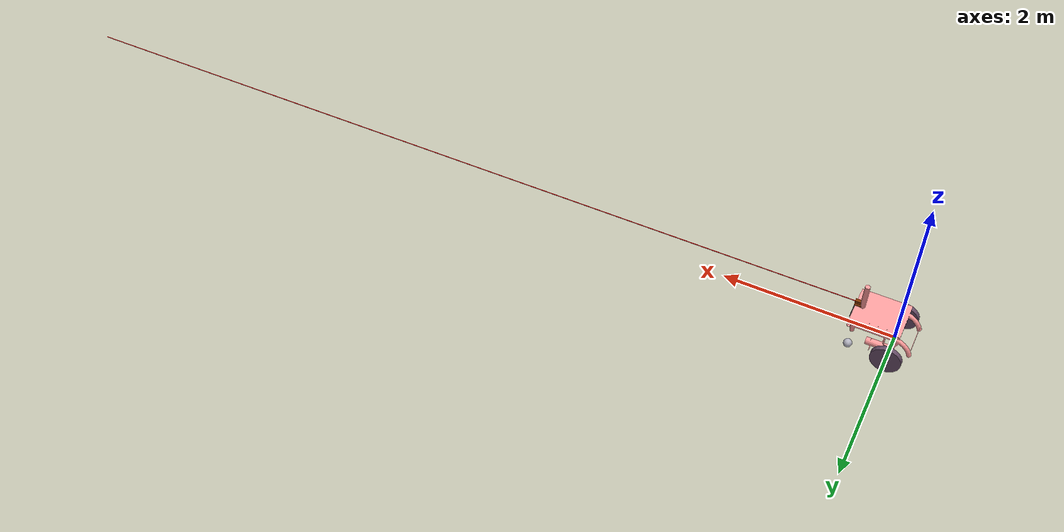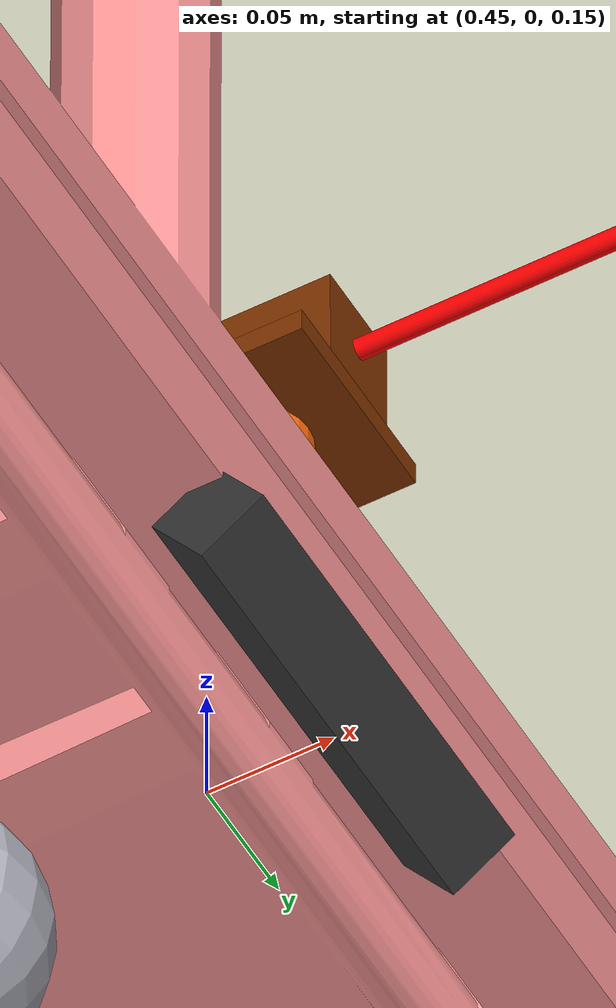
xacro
<?xml version="1.0"?>
<robot name="ryobi1" xmlns:xacro="http://www.ros.org/wiki/xacro">
<!-- Put here the robot description -->

<xacro:property name="PI" value="3.1415926535897931"/>

<xacro:include filename="$(find ryobi_description)/urdf/ryobi_description.urdf" />
<xacro:include filename="$(find ryobi_description)/urdf/ryobi.gazebo" />

</robot>

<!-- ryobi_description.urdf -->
<robot
  name="ryobi">
  <link
    name="base_link">
    <inertial>
      <origin
        xyz="0 0 0"
        rpy="0 0 0" />
      <mass
        value="1.97" />
      <inertia
        ixx="0"
        ixy="0"
        ixz="0"
        iyy="0"
        iyz="0"
        izz="0" />
    </inertial>
    <visual>
      <origin
        xyz="0 0 0"
        rpy="1.57075 0 0" />
      <geometry>
        <mesh
          filename="package://ryobi_description/meshes/base_link.STL" />
      </geometry>
      <material
        name="">
        <color
          rgba="0.792156862745098 0.819607843137255 0.929411764705882 1" />
      </material>
    </visual>
    <collision>
      <origin
        xyz="0 0 0.2"
        rpy="0 0 0" />
      <geometry>
        <sphere radius="0.01"/>
      </geometry>
    </collision>
  </link>
  <link
    name="base_chassis">
    <inertial>
      <origin
        xyz="0.181603473423253 0 0.205427256737739"
        rpy="0 0 0" />
      <mass
        value="50.22" />
      <inertia
        ixx="1"
        ixy="0"
        ixz="0"
        iyy="1"
        iyz="0"
        izz="1" />
    </inertial>
    <visual>
      <origin
        xyz="0 0 0"
        rpy="0 0 0" />
      <geometry>
        <mesh
          filename="package://ryobi_description/meshes/qubi_chassis.dae" />
      </geometry>
      <material
        name="">
        <color
          rgba="1 0.6 0.6 1" />
      </material>
    </visual>
    <collision>
      <origin
        xyz="0.18 0 0.2"
        rpy="0 0 0" />
      <geometry>
        <box size="0.8 0.5 0.5"/>
      </geometry>
    </collision>
  </link>
  <joint
    name="chassis_joint"
    type="fixed">
    <origin
      xyz="0 0 0"
      rpy="0 0 0" />
    <parent
      link="base_link" />
    <child
      link="base_chassis" />
    <axis
      xyz="0 0 0" />
  </joint>
  <link
    name="right_wheel">
    <inertial>
      <origin
        xyz="0 0 0"
        rpy="0 0 0" />
      <mass
        value="5.04" />
      <inertia
        ixx="1"
        ixy="0"
        ixz="0"
        iyy="1"
        iyz="0"
        izz="1" />
    </inertial>
    <visual>
      <origin
        xyz="0 0 0"
         rpy="1.57075 0 0" />
      <geometry>
        <cylinder length="0.06" radius="0.175"/>
      </geometry>
      <material
        name="">
        <color
          rgba="0.4 0.3 0.4 1" />
      </material>
    </visual>
    <collision>
      <origin
        xyz="0 0 0"
        rpy="1.57075 0 0" />
      <geometry>
        <cylinder length="0.06" radius="0.175"/>
      </geometry>
    </collision>
  </link>
  <joint
    name="right_wheel_joint"
    type="continuous">
    <origin
      xyz="0 -0.340935167690438 0"
      rpy="0 0 0" />
    <parent
      link="base_chassis" />
    <child
      link="right_wheel" />
    <axis
      xyz="0 1 0" />
  </joint>
  <link
    name="left_wheel">
    <inertial>
      <origin
        xyz="0 0 0"
        rpy="0 0 0" />
      <mass
        value="5.04" />
      <inertia
        ixx="1"
        ixy="0"
        ixz="0"
        iyy="1"
        iyz="0"
        izz="1" />
    </inertial>
    <visual>
      <origin
        xyz="0 0 0"
        rpy="1.57075 0 0" />
      <geometry>
        <cylinder length="0.06" radius="0.175"/>
      </geometry>
      <material
        name="">
        <color
          rgba="0.4 0.3 0.4 1" />
      </material>
    </visual>
    <collision>
      <origin
        xyz="0 0 0"
        rpy="1.57075 0 0" />
      <geometry>
        <cylinder length="0.06" radius="0.175"/>
      </geometry>
    </collision>
  </link>
  <joint
    name="left_wheel_joint"
    type="continuous">
    <origin
      xyz="0 0.340935167690436 0"
      rpy="0 0 0" />
    <parent
      link="base_chassis" />
    <child
      link="left_wheel" />
    <axis
      xyz="0 1 0" />
  </joint>
  <link
    name="camera_link">
    <inertial>
      <origin
        xyz="0 0 0"
        rpy="0 0 0" />
      <mass
        value="0.152248853886065" />
      <inertia
        ixx="0"
        ixy="0"
        ixz="0"
        iyy="0"
        iyz="0"
        izz="0" />
    </inertial>
    <visual>
      <origin
        xyz="0 0 0"
        rpy="0 0 0" />
     <geometry>
        <box size="0.033 0.175 0.03"/>
      </geometry>
      <material
        name="">
        <color
          rgba="0.2 0.2 0.2 1" />
      </material>
    </visual>
    <collision>
      <origin
        xyz="0 0 0"
        rpy="0 0 0" />
      <geometry>
        <box size="0.033 0.175 0.03"/>
      </geometry>
    </collision>
  </link>
  <joint
    name="camera_joint"
    type="fixed">
    <origin
      xyz="0.5 0 0.179722496868772"
      rpy="0 0.937986 0" />
     <parent
      link="base_chassis" />
    <child
      link="camera_link" />
    <axis
      xyz="0 0 0" />
  </joint>
  <link
    name="right_front">
    <inertial>
      <origin
        xyz="0.477137660665035 -0.200921644523563 -0.0488991518472257"
        rpy="0 0 0" />
      <mass
        value="3.50" />
      <inertia
        ixx="0.017"
        ixy="0"
        ixz="0"
        iyy="0.028"
        iyz="0"
        izz="0.015" />
    </inertial>
    <visual>
      <origin
        xyz="0 0 0"
        rpy="0 0 0" />
       <geometry>
        <sphere radius="0.05"/>
      </geometry>
      <material
        name="">
        <color
          rgba="0.7 0.7 0.75 1" />
      </material>
    </visual>
    <collision>
      <origin
        xyz="0 0 0"
        rpy="0 0 0" />
      <geometry>
      <sphere radius="0.05"/>
       </geometry>
    </collision>
  </link>
  <joint
    name="right_front-joint"
    type="fixed">
    <origin
      xyz="0.45 -0.2 -0.125"
      rpy="0 0 0" />
    <parent
      link="base_link" />
    <child
      link="right_front" />
    <axis
      xyz="0 0 0" />
  </joint>
  <link
    name="left_front">
    <inertial>
      <origin
        xyz="0.477137660665035 0.206578355476427 -0.0488991518472244"
        rpy="0 0 0" />
      <mass
        value="3.50" />
      <inertia
        ixx="0.017"
        ixy="0"
        ixz="0"
        iyy="0.028"
        iyz="0"
        izz="0.015" />
    </inertial>
    <visual>
      <origin
        xyz="0 0 0"
        rpy="0 0 0" />
      <geometry>
        <sphere radius="0.05"/>
      </geometry>
      <material
        name="">
        <color
          rgba="0.7 0.7 0.75 1" />
      </material>
    </visual>
    <collision>
      <origin
        xyz="0 0 0"
        rpy="0 0 0" />
      <geometry>
        <sphere radius="0.05"/>
      </geometry>
    </collision>
  </link>
  <joint
    name="left_front_joint"
    type="fixed">
    <origin
      xyz="0.45 0.2 -0.125"
      rpy="0 0 0" />
     <parent
      link="base_link" />
    <child
      link="left_front" />
    <axis
      xyz="0 0 0" />
  </joint>
   <transmission name="left_wheel_transmission">
    <type>transmission_interface/SimpleTransmission</type>
    <joint name="left_wheel_joint">
        <hardwareInterface>hardware_interface/VelocityJointInterface</hardwareInterface>
    </joint>
    <actuator name="left_wheel_actuator">
        <mechanicalReduction>1</mechanicalReduction>
         <hardwareInterface>hardware_interface/VelocityJointInterface</hardwareInterface>
    </actuator>
  </transmission>

  <transmission name="right_wheel_transmission">
    <type>transmission_interface/SimpleTransmission</type>
    <joint name="right_wheel_joint">
        <hardwareInterface>hardware_interface/VelocityJointInterface</hardwareInterface>
    </joint>
    <actuator name="right_wheel_actuator">
        <mechanicalReduction>1</mechanicalReduction>
         <hardwareInterface>hardware_interface/VelocityJointInterface</hardwareInterface>
    </actuator>
  </transmission>
  <gazebo reference="base_link">
    <material>Gazebo/White</material>
  </gazebo>
  <gazebo reference="base_chassis">
    <material>Gazebo/Orange</material>
  </gazebo>
  <gazebo reference="right_wheel">
    <material>Gazebo/DarkGrey</material>
  </gazebo>
  <gazebo reference="left_wheel">
    <material>Gazebo/DarkGrey</material>
  </gazebo>

  <gazebo reference="camera_link">
    <material>Gazebo/Black</material>
  </gazebo>
  <gazebo reference="right_front">
    <material>Gazebo/Grey</material>

  </gazebo>
  <gazebo reference="left_front">
    <material>Gazebo/Grey</material>

  </gazebo>

  <!-- Scaled Laser Mechanism (1/10th size of Ryobi) -->
  <joint name="laser_pan_joint" type="revolute">
    <origin xyz="0.47 0 0.3" rpy="0 0 0" />
    <parent link="base_chassis" />
    <child link="laser_pan_link" />
    <axis xyz="0 0 1" />
    <limit effort="1000" lower="-2.0" upper="2.0" velocity="0.5" />
  </joint>

  <link name="laser_pan_link">
    <visual>
      <origin rpy="0 0 0" xyz="0 0 0.01" />
      <geometry>
        <cylinder radius="0.02" length="0.02"/>
      </geometry>
      <material name="orange">
        <color rgba="1.0 0.423529 0.039215 1.0" />
      </material>
    </visual>
    <inertial>
      <mass value="0.1" />
      <origin xyz="0 0 0.01"/>
      <inertia ixx="0.005" ixy="0.0" ixz="0.0" iyy="0.005" iyz="0.0" izz="0.005" />
    </inertial>
  </link>

  <joint name="laser_tilt_joint" type="revolute">
    <origin rpy="0 0 0" xyz="0 0 0.02" />
    <parent link="laser_pan_link" />
    <child link="laser_tilt_link" />
    <axis xyz="0 1 0" />
    <limit effort="1000" lower="-1.57" upper="1.57" velocity="0.5" />
  </joint>

  <link name="laser_tilt_link">
    <visual>
      <origin rpy="0.0 0.0 0.0" xyz="0 0 0.005" />
      <geometry>
        <box size="0.08 0.08 0.01"/>
      </geometry>
      <material name="red">
        <color rgba="0.5 0.2 0 1" />
      </material>
    </visual>
    <inertial>
      <mass value="0.06" />
      <origin xyz="0 0 0.005"/>
      <inertia ixx="0.005" ixy="0.0" ixz="0.0" iyy="0.005" iyz="0.0" izz="0.005" />
    </inertial>
  </link>

  <joint name="laser_fixed_joint" type="fixed">
    <parent link="laser_tilt_link" />
    <child link="laser_box_link" />
    <origin rpy="0 0 0" xyz="0 0 0.01" />
  </joint>

  <link name="laser_box_link">
    <visual>
      <origin rpy="0.0 0.0 0.0" xyz="0 0 0.02" />
      <geometry>
        <box size="0.08 0.04 0.04"/>
      </geometry>
      <material name="red">
        <color rgba="0.5 0.2 0 1" />
      </material>
    </visual>
    <inertial>
      <mass value="0.04" />
      <origin xyz="0 0 0.02"/>
      <inertia ixx="0.005" ixy="0.0" ixz="0.0" iyy="0.005" iyz="0.0" izz="0.005" />
    </inertial>
  </link>

  <joint name="laser_beam_joint" type="fixed">
    <parent link="laser_box_link" />
    <child link="laser_beam_link" />
    <origin rpy="0 0 0" xyz="0.04 0 0.02" />
  </joint>

  <link name="laser_beam_link">
    <visual>
      <origin rpy="0.0 1.57079632679 0.0" xyz="5 0 0"/>
      <geometry>
        <cylinder radius="0.004" length="10"/>
      </geometry>
      <material name="laser_red">
        <color rgba="1 0 0 1" />
      </material>
    </visual>
    <inertial>
      <mass value="0.002" />
      <origin xyz="5 0 0"/>
      <inertia ixx="0.005" ixy="0.0" ixz="0.0" iyy="0.005" iyz="0.0" izz="0.005" />
    </inertial>
  </link>

  <transmission name="laser_pan_trans">
    <type>transmission_interface/SimpleTransmission</type>
    <joint name="laser_pan_joint">
      <hardwareInterface>hardware_interface/EffortJointInterface</hardwareInterface>
    </joint>
    <actuator name="laser_pan_motor">
      <hardwareInterface>hardware_interface/EffortJointInterface</hardwareInterface>
      <mechanicalReduction>1</mechanicalReduction>
    </actuator>
  </transmission>

  <transmission name="laser_tilt_trans">
    <type>transmission_interface/SimpleTransmission</type>
    <joint name="laser_tilt_joint">
      <hardwareInterface>hardware_interface/EffortJointInterface</hardwareInterface>
    </joint>
    <actuator name="laser_tilt_motor">
      <hardwareInterface>hardware_interface/EffortJointInterface</hardwareInterface>
      <mechanicalReduction>1</mechanicalReduction>
    </actuator>
  </transmission>

  <gazebo reference="laser_pan_link">
    <material>Gazebo/Orange</material>
  </gazebo>
  <gazebo reference="laser_tilt_link">
    <material>Gazebo/Red</material>
  </gazebo>
  <gazebo reference="laser_box_link">
    <material>Gazebo/Red</material>
  </gazebo>
  <gazebo reference="laser_beam_link">
    <material>Gazebo/Red</material>
  </gazebo>

</robot>
